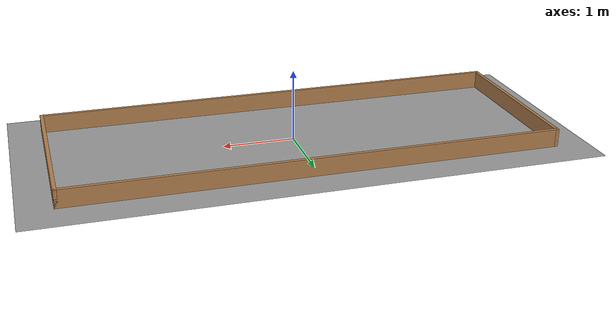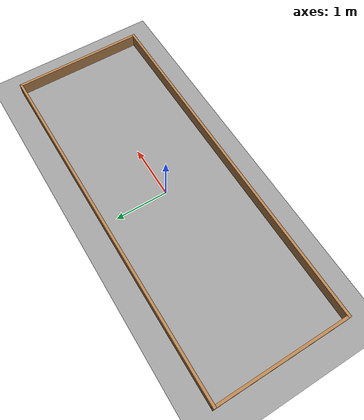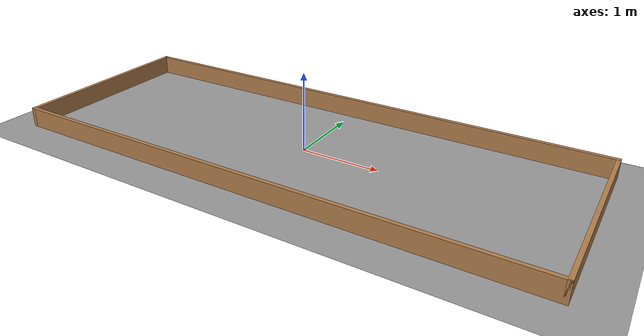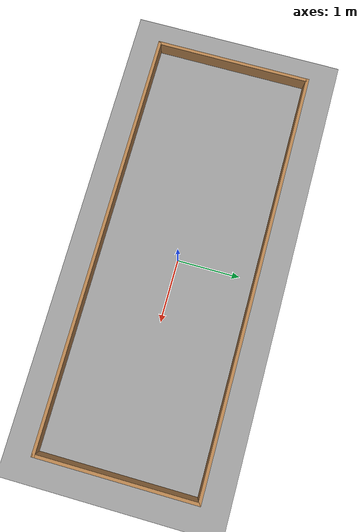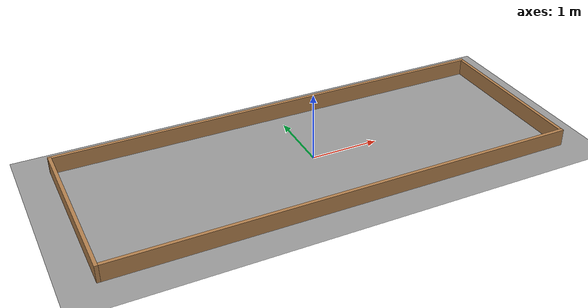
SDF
<sdf version="1.7">
 <world name="default">
  <include><uri>model://arena_walls</uri></include>
  <include><uri>model://sun</uri></include>
  <include><uri>model://default_ground</uri></include>
  <gravity>0 0 -9.8</gravity>
  <magnetic_field>6e-06 2.3e-05 -4.2e-05</magnetic_field>
  <atmosphere type="adiabatic"/>
  <physics type="ode">
   <max_step_size>0.001</max_step_size>
   <real_time_factor>1</real_time_factor>
   <real_time_update_rate>1000</real_time_update_rate>
  </physics>
  <spherical_coordinates>
   <surface_model>EARTH_WGS84</surface_model>
   <latitude_deg>0</latitude_deg>
   <longitude_deg>0</longitude_deg>
   <elevation>0</elevation>
   <heading_deg>0</heading_deg>
  </spherical_coordinates>
  <scene><ambient>0.4 0.4 0.4 1</ambient><background>0.7 0.7 0.7 1</background><shadows>1</shadows></scene>
 </world>
</sdf>

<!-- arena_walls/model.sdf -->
<sdf version='1.7'>
  <model name='arena_walls'>
    <pose>-0.025 0 0 0 -0 0</pose>
    <link name='Wall_12'>
      <collision name='Wall_12_Collision'>
        <geometry>
          <box>
            <size>6.8 0.05 0.25</size>
          </box>
        </geometry>
        <pose>0 0 0.125 0 -0 0</pose>
      </collision>
      <visual name='Wall_12_Visual'>
        <pose>0 0 0.125 0 -0 0</pose>
        <geometry>
          <box>
            <size>6.8 0.05 0.25</size>
          </box>
        </geometry>
        <material>
          <script>
            <name>Gazebo/Wood</name>
          </script>
          <ambient>1 1 1 1</ambient>
        </material>
        <meta>
          <layer>0</layer>
        </meta>
      </visual>
      <pose>0 -1.25 0 0 -0 0</pose>
    </link>
    <link name='Wall_26'>
      <collision name='Wall_26_Collision'>
        <geometry>
          <box>
            <size>6.8 0.05 0.25</size>
          </box>
        </geometry>
        <pose>0 0 0.125 0 -0 0</pose>
      </collision>
      <visual name='Wall_26_Visual'>
        <pose>0 0 0.125 0 -0 0</pose>
        <geometry>
          <box>
            <size>6.8 0.05 0.25</size>
          </box>
        </geometry>
        <material>
          <script>
            <name>Gazebo/Wood</name>
          </script>
          <ambient>1 1 1 1</ambient>
        </material>
        <meta>
          <layer>0</layer>
        </meta>
      </visual>
      <pose>0 1.25 0 0 -0 0</pose>
    </link>
    <link name='Wall_30'>
      <collision name='Wall_30_Collision'>
        <geometry>
          <box>
            <size>2.55 0.05 0.25</size>
          </box>
        </geometry>
        <pose>0 0 0.125 0 -0 0</pose>
      </collision>
      <visual name='Wall_30_Visual'>
        <pose>0 0 0.125 0 -0 0</pose>
        <geometry>
          <box>
            <size>2.55 0.05 0.25</size>
          </box>
        </geometry>
        <material>
          <script>
            <name>Gazebo/Wood</name>
          </script>
          <ambient>1 1 1 1</ambient>
        </material>
        <meta>
          <layer>0</layer>
        </meta>
      </visual>
      <pose>-3.375 0 0 0 -0 -1.5708</pose>
    </link>
    <link name='Wall_32'>
      <collision name='Wall_32_Collision'>
        <geometry>
          <box>
            <size>2.55 0.05 0.25</size>
          </box>
        </geometry>
        <pose>0 0 0.125 0 -0 0</pose>
      </collision>
      <visual name='Wall_32_Visual'>
        <pose>0 0 0.125 0 -0 0</pose>
        <geometry>
          <box>
            <size>2.55 0.05 0.25</size>
          </box>
        </geometry>
        <material>
          <script>
            <name>Gazebo/Wood</name>
          </script>
          <ambient>1 1 1 1</ambient>
        </material>
        <meta>
          <layer>0</layer>
        </meta>
      </visual>
      <pose>3.375 0 0 0 -0 1.5708</pose>
    </link>
    <static>1</static>
  </model>
</sdf>

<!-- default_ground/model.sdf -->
<sdf version='1.7'>
<model name='ground_plane'>
      <static>1</static>
      <link name='link'>
        <collision name='collision'>
          <geometry>
            <plane>
              <normal>0 0 1</normal>
              <size>100 100</size>
            </plane>
          </geometry>
          <surface>
            <contact>
              <collide_bitmask>65535</collide_bitmask>
              <ode/>
            </contact>
            <friction>
              <ode>
                <mu>100</mu>
                <mu2>50</mu2>
              </ode>
              <torsional>
                <ode/>
              </torsional>
            </friction>
            <bounce/>
          </surface>
          <max_contacts>10</max_contacts>
        </collision>
        <visual name='visual'>
          <cast_shadows>0</cast_shadows>
          <geometry>
            <plane>
              <normal>0 0 1</normal>
              <size>100 100</size>
            </plane>
          </geometry>
          <material>
            <script>
              <uri>file://media/materials/scripts/gazebo.material</uri>
              <name>Gazebo/Grey</name>
            </script>
          </material>
        </visual>
        <self_collide>0</self_collide>
        <enable_wind>0</enable_wind>
        <kinematic>0</kinematic>
      </link>
    </model>
</sdf>
